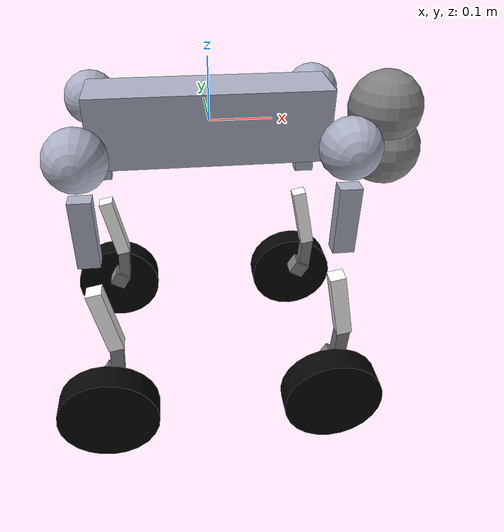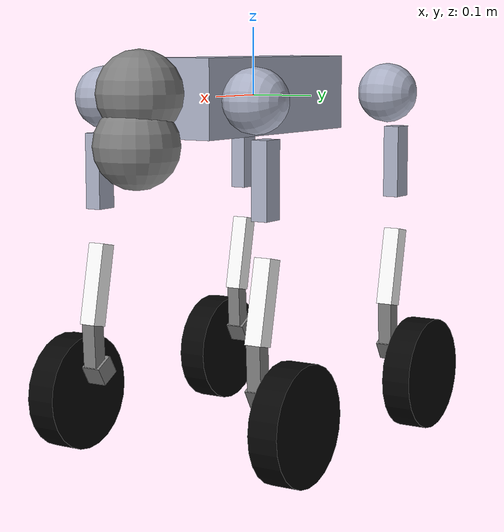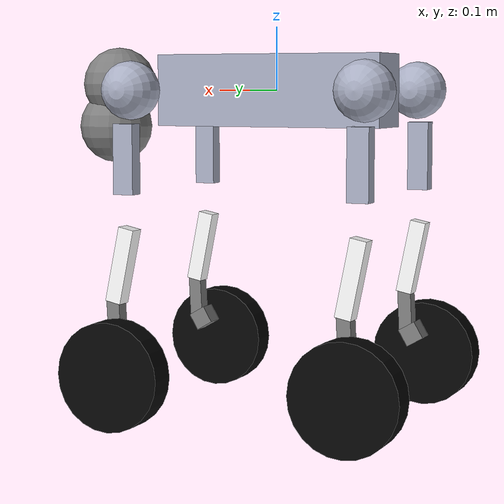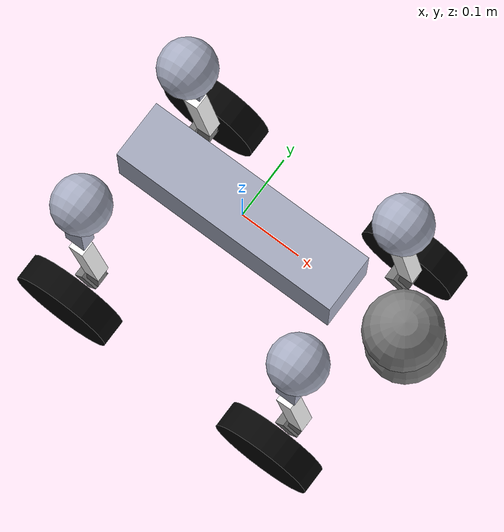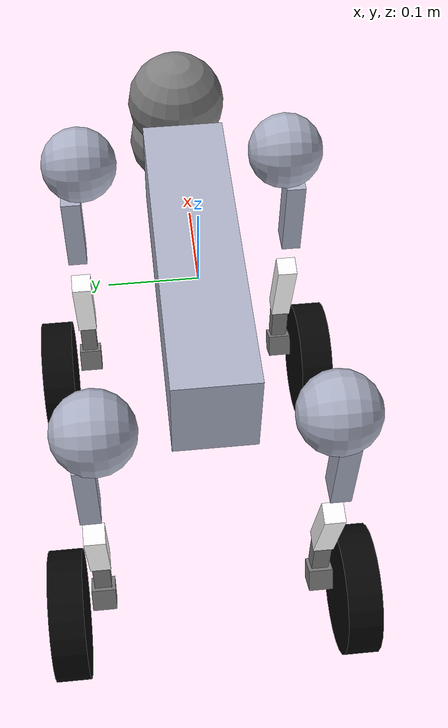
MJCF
<?xml version='1.0' encoding='utf-8'?>
<mujoco model="go2w_description">
  <compiler angle="radian" boundmass="1e-06" boundinertia="1e-08" meshdir=".." />
  <worldbody>
    <body name="base">
      <inertial pos="0.0211894 0 -0.00537167" quat="-0.000544413 0.713469 -0.00173648 0.700684" mass="6.923" diaginertia="0.10719 0.0982431 0.0244752" />
      <joint type="free" />
      <geom size="0.1881 0.04675 0.057" type="box" rgba="0.671705 0.692426 0.77427 1" />
      <geom size="0.06" pos="0.285 0 0.01" />
      <geom size="0.06" pos="0.293 0 -0.06" />
      <body name="FL_hip" pos="0.1934 0.0465 0">
        <inertial pos="-0.0054 0.00194 -0.000105" quat="0.497014 0.499245 0.505462 0.498237" mass="0.678" diaginertia="0.00088403 0.000596003 0.000479967" />
        <joint name="FL_hip_joint" pos="0 0 0" axis="1 0 0" range="-1.0472 1.0472" actuatorfrcrange="-23.7 23.7" />
        <geom size="0.046" pos="0 0.08 0" quat="0.707107 0.707107 0 0" rgba="0.671705 0.692426 0.77427 1" />
        <body name="FL_thigh" pos="0 0.0955 0">
          <inertial pos="-0.00374 -0.0223 -0.0327" quat="0.829533 0.0847635 -0.0200632 0.551623" mass="1.152" diaginertia="0.00594973 0.00584149 0.000878787" />
          <joint name="FL_thigh_joint" pos="0 0 0" axis="0 1 0" range="-1.5708 3.4907" actuatorfrcrange="-23.7 23.7" />
          <geom size="0.055 0.01225 0.017" pos="0 0 -0.1065" quat="0.707107 0 0.707107 0" type="box" rgba="0.671705 0.692426 0.77427 1" />
          <body name="FL_calf" pos="0 0 -0.213">
            <inertial pos="-0.0055282 -0.000174534 -0.202286" quat="0.706432 0.0352836 0.030752 0.706232" mass="0.86029" diaginertia="0.00442232 0.0037684 0.00107395" />
            <joint name="FL_calf_joint" pos="0 0 0" axis="0 1 0" range="-2.7227 -0.83776" actuatorfrcrange="-35.55 35.55" />
            <geom size="0.013 0.013 0.06" pos="0.008 0 -0.06" quat="0.994493 0 -0.104807 0" type="box" rgba="1 1 1 1" />
            <geom size="0.011 0.011 0.0325" pos="0.02 0 -0.148" quat="0.999688 0 0.0249974 0" type="box" />
            <geom size="0.0155 0.0155 0.015" pos="0.00801333 0 -0.18745" quat="0.965093 0 0.261909 0" type="box" />
            <body name="FL_foot" pos="0 0 -0.2264">
              <inertial pos="0 0.06 0" quat="0.707107 0 0 0.707107" mass="0.52" diaginertia="0.0012 0.0007 0.0007" />
              <joint name="FL_foot_joint" pos="0 0 0" axis="0 1 0" actuatorfrcrange="-23.7 23.7" />
              <geom size="0.086 0.0225" pos="0 0.048 0" quat="0.707107 0.707107 0 0" type="cylinder" rgba="0.023455 0.023455 0.023455 1" />
            </body>
          </body>
        </body>
      </body>
      <body name="FR_hip" pos="0.1934 -0.0465 0">
        <inertial pos="-0.0054 -0.00194 -0.000105" quat="0.498237 0.505462 0.499245 0.497014" mass="0.678" diaginertia="0.00088403 0.000596003 0.000479967" />
        <joint name="FR_hip_joint" pos="0 0 0" axis="1 0 0" range="-1.0472 1.0472" actuatorfrcrange="-23.7 23.7" />
        <geom size="0.046" pos="0 -0.08 0" quat="0.707107 0.707107 0 0" rgba="0.671705 0.692426 0.77427 1" />
        <body name="FR_thigh" pos="0 -0.0955 0">
          <inertial pos="-0.00374 0.0223 -0.0327" quat="0.551623 -0.0200632 0.0847635 0.829533" mass="1.152" diaginertia="0.00594973 0.00584149 0.000878787" />
          <joint name="FR_thigh_joint" pos="0 0 0" axis="0 1 0" range="-1.5708 3.4907" actuatorfrcrange="-23.7 23.7" />
          <geom size="0.055 0.01225 0.017" pos="0 0 -0.1065" quat="0.707107 0 0.707107 0" type="box" rgba="0.671705 0.692426 0.77427 1" />
          <body name="FR_calf" pos="0 0 -0.213">
            <inertial pos="0.00948999 0.000174534 -0.202286" quat="0.706957 -0.0103 -0.00575096 0.707158" mass="0.86029" diaginertia="0.00437114 0.00374634 0.00104482" />
            <joint name="FR_calf_joint" pos="0 0 0" axis="0 1 0" range="-2.7227 -0.83776" actuatorfrcrange="-35.55 35.55" />
            <geom size="0.013 0.013 0.06" pos="0.01 0 -0.06" quat="0.995004 0 -0.0998334 0" type="box" rgba="1 1 1 1" />
            <geom size="0.011 0.011 0.0325" pos="0.02 0 -0.148" quat="0.999688 0 0.0249974 0" type="box" />
            <geom size="0.0155 0.0155 0.015" pos="0.00801333 0 -0.18745" quat="0.965093 0 0.261909 0" type="box" />
            <body name="FR_foot" pos="0 0 -0.2264">
              <inertial pos="0 -0.06 0" quat="0.707107 0 0 0.707107" mass="0.52" diaginertia="0.0012 0.0007 0.0007" />
              <joint name="FR_foot_joint" pos="0 0 0" axis="0 1 0" actuatorfrcrange="-23.7 23.7" />
              <geom size="0.086 0.0225" pos="0 -0.048 0" quat="0.707107 0.707107 0 0" type="cylinder" rgba="0.023455 0.023455 0.023455 1" />
            </body>
          </body>
        </body>
      </body>
      <body name="RL_hip" pos="-0.1934 0.0465 0">
        <inertial pos="0.0054 0.00194 -0.000105" quat="0.505462 0.498237 0.497014 0.499245" mass="0.678" diaginertia="0.00088403 0.000596003 0.000479967" />
        <joint name="RL_hip_joint" pos="0 0 0" axis="1 0 0" range="-1.0472 1.0472" actuatorfrcrange="-23.7 23.7" />
        <geom size="0.046" pos="0 0.08 0" quat="0.707107 0.707107 0 0" rgba="0.671705 0.692426 0.77427 1" />
        <body name="RL_thigh" pos="0 0.0955 0">
          <inertial pos="-0.00374 -0.0223 -0.0327" quat="0.829533 0.0847635 -0.0200632 0.551623" mass="1.152" diaginertia="0.00594973 0.00584149 0.000878787" />
          <joint name="RL_thigh_joint" pos="0 0 0" axis="0 1 0" range="-0.5236 4.5379" actuatorfrcrange="-23.7 23.7" />
          <geom size="0.055 0.01225 0.017" pos="0 0 -0.1065" quat="0.707107 0 0.707107 0" type="box" rgba="0.671705 0.692426 0.77427 1" />
          <body name="RL_calf" pos="0 0 -0.213">
            <inertial pos="-0.0055282 -0.000174534 -0.202286" quat="0.706432 0.0352836 0.030752 0.706232" mass="0.86029" diaginertia="0.00442232 0.0037684 0.00107395" />
            <joint name="RL_calf_joint" pos="0 0 0" axis="0 1 0" range="-2.7227 -0.83776" actuatorfrcrange="-35.55 35.55" />
            <geom size="0.013 0.013 0.06" pos="0.01 0 -0.06" quat="0.995004 0 -0.0998334 0" type="box" rgba="1 1 1 1" />
            <geom size="0.011 0.011 0.0325" pos="0.02 0 -0.148" quat="0.999688 0 0.0249974 0" type="box" />
            <geom size="0.0155 0.0155 0.015" pos="0.00801333 0 -0.18745" quat="0.965093 0 0.261909 0" type="box" />
            <body name="RL_foot" pos="0 0 -0.2264">
              <inertial pos="0 0.06 0" quat="0.707107 0 0 0.707107" mass="0.52" diaginertia="0.0012 0.0007 0.0007" />
              <joint name="RL_foot_joint" pos="0 0 0" axis="0 1 0" actuatorfrcrange="-23.7 23.7" />
              <geom size="0.086 0.0225" pos="0 0.048 0" quat="0.707107 0.707107 0 0" type="cylinder" rgba="0.023455 0.023455 0.023455 1" />
            </body>
          </body>
        </body>
      </body>
      <body name="RR_hip" pos="-0.1934 -0.0465 0">
        <inertial pos="0.0054 -0.00194 -0.000105" quat="0.499245 0.497014 0.498237 0.505462" mass="0.678" diaginertia="0.00088403 0.000596003 0.000479967" />
        <joint name="RR_hip_joint" pos="0 0 0" axis="1 0 0" range="-1.0472 1.0472" actuatorfrcrange="-23.7 23.7" />
        <geom size="0.046" pos="0 -0.08 0" quat="0.707107 0.707107 0 0" rgba="0.671705 0.692426 0.77427 1" />
        <body name="RR_thigh" pos="0 -0.0955 0">
          <inertial pos="-0.00374 0.0223 -0.0327" quat="0.551623 -0.0200632 0.0847635 0.829533" mass="1.152" diaginertia="0.00594973 0.00584149 0.000878787" />
          <joint name="RR_thigh_joint" pos="0 0 0" axis="0 1 0" range="-0.5236 4.5379" actuatorfrcrange="-23.7 23.7" />
          <geom size="0.055 0.01225 0.017" pos="0 0 -0.1065" quat="0.707107 0 0.707107 0" type="box" rgba="0.671705 0.692426 0.77427 1" />
          <body name="RR_calf" pos="0 0 -0.213">
            <inertial pos="0.00948999 0.000174534 -0.202286" quat="0.706957 -0.0103 -0.00575096 0.707158" mass="0.86029" diaginertia="0.00437114 0.00374634 0.00104482" />
            <joint name="RR_calf_joint" pos="0 0 0" axis="0 1 0" range="-2.7227 -0.83776" actuatorfrcrange="-35.55 35.55" />
            <geom size="0.013 0.013 0.06" pos="0.01 0 -0.06" quat="0.995004 0 -0.0998334 0" type="box" rgba="1 1 1 1" />
            <geom size="0.011 0.011 0.0325" pos="0.02 0 -0.148" quat="0.999688 0 0.0249974 0" type="box" />
            <geom size="0.0155 0.0155 0.015" pos="0.00801333 0 -0.18745" quat="0.965093 0 0.261909 0" type="box" />
            <body name="RR_foot" pos="0 0 -0.2264">
              <inertial pos="0 -0.06 0" quat="0.707107 0 0 0.707107" mass="0.52" diaginertia="0.0012 0.0007 0.0007" />
              <joint name="RR_foot_joint" pos="0 0 0" axis="0 1 0" actuatorfrcrange="-23.7 23.7" />
              <geom size="0.086 0.0225" pos="0 -0.048 0" quat="0.707107 0.707107 0 0" type="cylinder" rgba="0.023455 0.023455 0.023455 1" />
            </body>
          </body>
        </body>
      </body>
    </body>
  </worldbody>
</mujoco>
